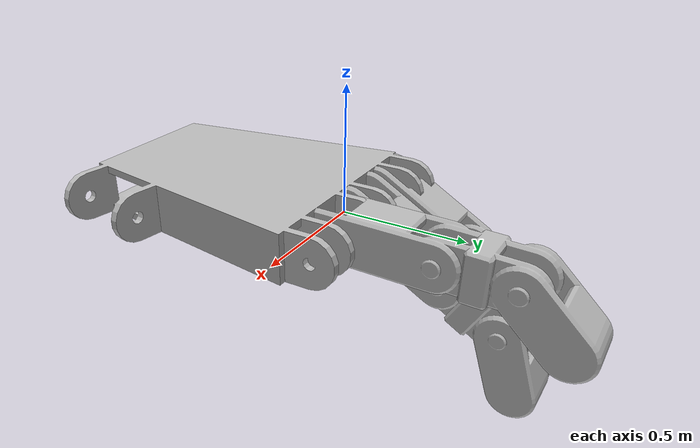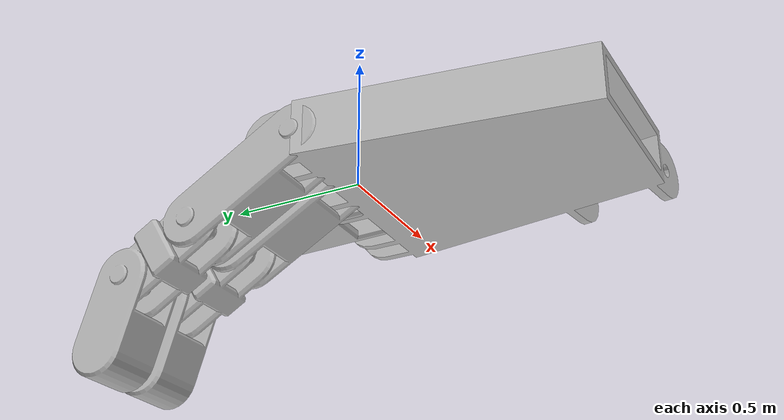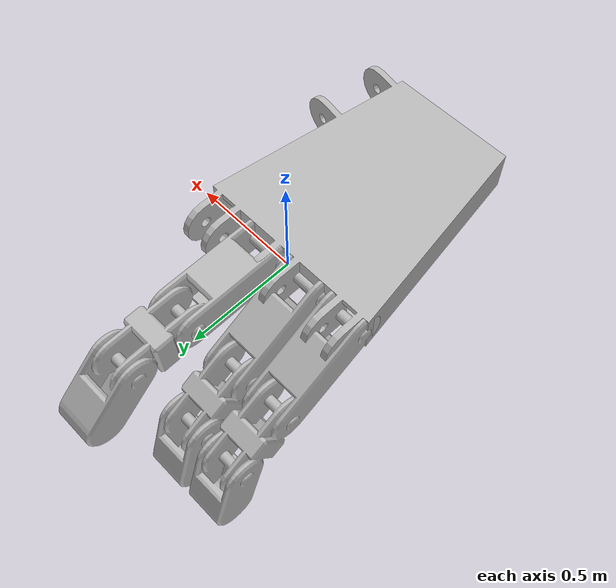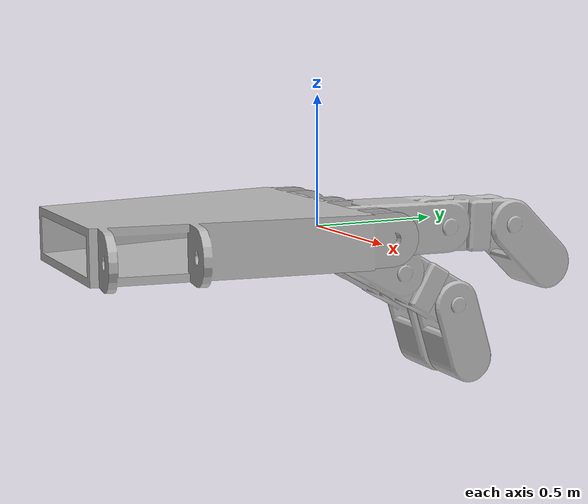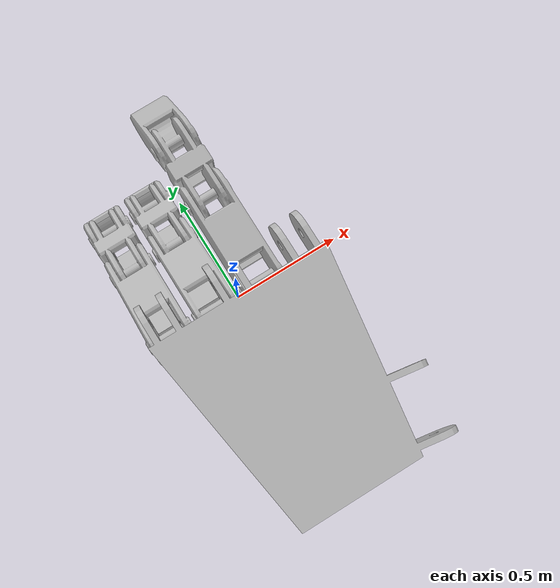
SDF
<?xml version="1.0" ?>
<sdf version='1.4'>
  <model name='robot_hand'>
    <link name='base_link'>
      <pose>0 0 0 0 -0 0</pose>
      <inertial>
        <pose>0.000759234 4.26041e-19 0.0404474 0 -0 0</pose>
        <mass>0.0629149</mass>
        <inertia>
          <ixx>7.11135e-05</ixx>
          <ixy>1.03996e-21</ixy>
          <ixz>1.97005e-06</ixz>
          <iyy>0.00010929</iyy>
          <iyz>-2.50104e-22</iyz>
          <izz>4.5574e-05</izz>
        </inertia>
      </inertial>
      <collision name='base_link_collision'>
        <pose>0 0 0 0 -0 0</pose>
        <geometry>
          <mesh>
            <scale>10 10 10</scale>
            <uri>model://robot_hand/meshes/base_link.STL</uri>
          </mesh>
        </geometry>
      </collision>
      <visual name='base_link_visual'>
        <pose>0 0 0 0 -0 0</pose>
        <geometry>
          <mesh>
            <scale>10 10 10</scale>
            <uri>model://robot_hand/meshes/base_link.dae</uri>
          </mesh>
        </geometry>
      </visual>
      <velocity_decay>
        <linear>0</linear>
        <angular>0</angular>
      </velocity_decay>
    </link>
    <link name='finger_1'>
      <pose>0.234 0.01 0 1.5708 -0.017453 -1.5708</pose>
      <inertial>
        <pose>-0.038749 -0.018152 -0.011 0 -0 0</pose>
        <mass>0.023536</mass>
        <inertia>
          <ixx>1.2095e-05</ixx>
          <ixy>5.7044e-06</ixy>
          <ixz>-4.6491e-16</ixz>
          <iyy>8.8391e-06</iyy>
          <iyz>3.4685e-16</iyz>
          <izz>1.8544e-05</izz>
        </inertia>
      </inertial>
      <collision name='finger_1_collision'>
        <pose>0 0 0 0 -0 0</pose>
        <geometry>
          <mesh>
            <scale>10 10 10</scale>
            <uri>model://robot_hand/meshes/finger_1.STL</uri>
          </mesh>
        </geometry>
      </collision>
      <visual name='finger_1_visual'>
        <pose>0 0 0 0 -0 0</pose>
        <geometry>
          <mesh>
            <scale>10 10 10</scale>
            <uri>model://robot_hand/meshes/finger_1.dae</uri>
          </mesh>
        </geometry>
      </visual>
      <velocity_decay>
        <linear>0</linear>
        <angular>0</angular>
      </velocity_decay>
    </link>
    <joint name='joint_1' type='revolute'>
      <child>finger_1</child>
      <parent>base_link</parent>
      <axis>
        <xyz>-1 3.6091e-06 -3.67265e-06</xyz>
        <limit>
          <lower>-0.6</lower>
          <upper>1.3788</upper>
          <effort>0</effort>
          <velocity>0</velocity>
        </limit>
        <dynamics/>
      </axis>
    </joint>
    <link name='finger_2'>
      <pose>0 0.01 0 1.5708 -0.52049 -1.5708</pose>
      <inertial>
        <pose>-0.054048 -0.00040729 4.8547e-13 0 -0 0</pose>
        <mass>0.023536</mass>
        <inertia>
          <ixx>2.0487e-06</ixx>
          <ixy>3.3905e-07</ixy>
          <ixz>1.6633e-16</ixz>
          <iyy>2.5629e-05</iyy>
          <iyz>7.6674e-18</iyz>
          <izz>2.5288e-05</izz>
        </inertia>
      </inertial>
      <collision name='finger_2_collision'>
        <pose>0 0 0 0 -0 0</pose>
        <geometry>
          <mesh>
            <scale>10 10 10</scale>
            <uri>model://robot_hand/meshes/finger_2.STL</uri>
          </mesh>
        </geometry>
      </collision>
      <visual name='finger_2_visual'>
        <pose>0 0 0 0 -0 0</pose>
        <geometry>
          <mesh>
            <scale>10 10 10</scale>
            <uri>model://robot_hand/meshes/finger_2.dae</uri>
          </mesh>
        </geometry>
      </visual>
      <velocity_decay>
        <linear>0</linear>
        <angular>0</angular>
      </velocity_decay>
    </link>
    <joint name='joint_2' type='revolute'>
      <child>finger_2</child>
      <parent>base_link</parent>
      <axis>
        <xyz>-1 1.8465e-06 -3.18678e-06</xyz>
        <limit>
          <lower>-0.50304</lower>
          <upper>0.87577</upper>
          <effort>0</effort>
          <velocity>0</velocity>
        </limit>
        <dynamics/>
      </axis>
    </joint>
    <link name='finger_3'>
      <pose>-0.234 0.01 0 1.5708 -0.52705 -1.5708</pose>
      <inertial>
        <pose>-0.052747 -0.0035714 0.011 0 -0 0</pose>
        <mass>0.023536</mass>
        <inertia>
          <ixx>3.0246e-06</ixx>
          <ixy>3.2002e-06</ixy>
          <ixz>-1.0623e-14</ixz>
          <iyy>2.3113e-05</iyy>
          <iyz>-1.1386e-15</iyz>
          <izz>2.3748e-05</izz>
        </inertia>
      </inertial>
      <collision name='finger_3_collision'>
        <pose>0 0 0 0 -0 0</pose>
        <geometry>
          <mesh>
            <scale>10 10 10</scale>
            <uri>model://robot_hand/meshes/finger_3.STL</uri>
          </mesh>
        </geometry>
      </collision>
      <visual name='finger_3_visual'>
        <pose>0 0 0 0 -0 0</pose>
        <geometry>
          <mesh>
            <scale>10 10 10</scale>
            <uri>model://robot_hand/meshes/finger_3.dae</uri>
          </mesh>
        </geometry>
      </visual>
      <velocity_decay>
        <linear>0</linear>
        <angular>0</angular>
      </velocity_decay>
    </link>
    <joint name='joint_3' type='revolute'>
      <child>finger_3</child>
      <parent>base_link</parent>
      <axis>
        <xyz>-1 1.82563e-06 -3.17473e-06</xyz>
        <limit>
          <lower>-0.50959</lower>
          <upper>0.86922</upper>
          <effort>0</effort>
          <velocity>0</velocity>
        </limit>
        <dynamics/>
      </axis>
    </joint>
     <joint name = "my_mass_joint" type="prismatic">
        <parent>world</parent>
          <child>base_link</child>
          <axis>
            <xyz>0 0 1</xyz>
          </axis>
      </joint>
      <plugin name="mass_joint" filename="libMassJoint.so" />

  </model>
</sdf>
